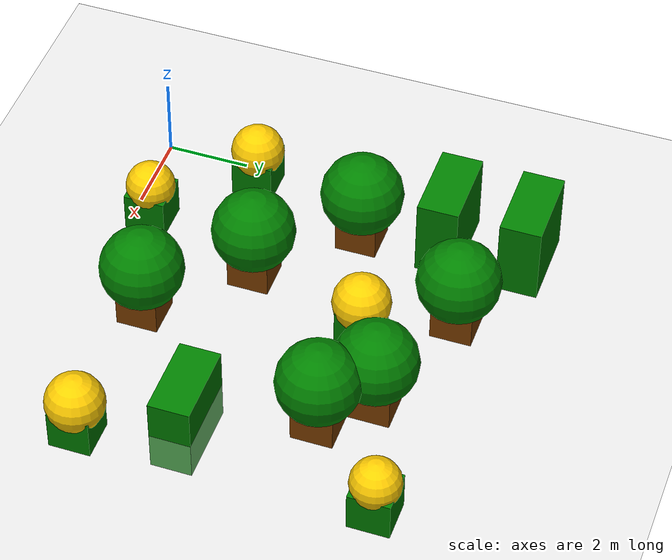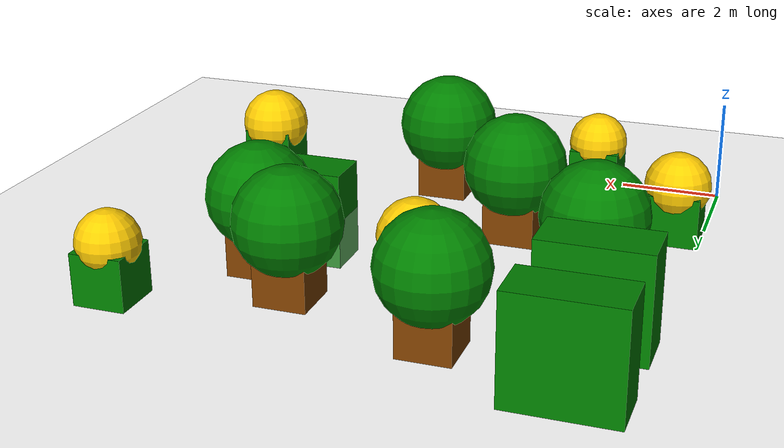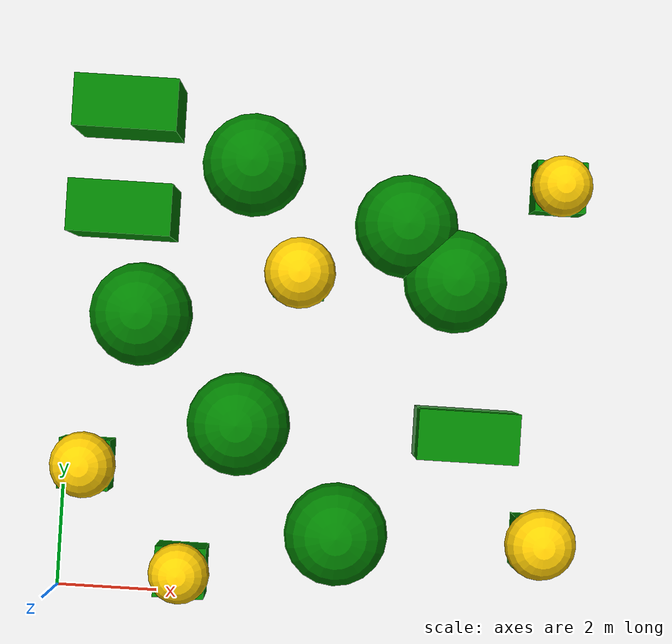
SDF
<sdf version="1.7">
 <world name="default">
  <model name="ground_plane">
   <static>1</static>
   <link name="link">
    <collision name="collision">
     <geometry><plane><normal>0 0 1</normal><size>100 100</size></plane></geometry>
     <surface>
      <contact><collide_bitmask>65535</collide_bitmask></contact>
      <friction><ode><mu>100</mu><mu2>50</mu2></ode></friction>
     </surface>
    </collision>
    <visual name="visual">
     <cast_shadows>0</cast_shadows>
     <geometry><plane><normal>0 0 1</normal><size>100 100</size></plane></geometry>
     <material>
      <script><uri>file://media/materials/scripts/gazebo.material</uri><name>Gazebo/Grey</name></script>
     </material>
    </visual>
   </link>
  </model>
  <light name="sun" type="directional">
   <pose>0 0 10 0 -0 0</pose>
   <diffuse>0.8 0.8 0.8 1</diffuse>
   <specular>0.2 0.2 0.2 1</specular>
   <attenuation>
    <range>1000</range>
    <constant>0.9</constant>
    <linear>0.01</linear>
    <quadratic>0.001</quadratic>
   </attenuation>
   <direction>-0.5 0.1 -0.9</direction>
   <spot><inner_angle>0</inner_angle><outer_angle>0</outer_angle><falloff>0</falloff></spot>
  </light>
  <model name="hedge">
   <static>1</static>
   <link name="link">
    <visual name="visual">
     <geometry><box><size>2 1 2</size></box></geometry>
     <material><ambient>0 0.5 0 1</ambient><diffuse>0 0.5 0 1</diffuse></material>
     <pose>0 0 1 0 -0 0</pose>
    </visual>
    <collision name="collision_stem">
     <geometry><box><size>2 1 2</size></box></geometry>
     <pose>0 0 1 0 -0 0</pose>
    </collision>
   </link>
   <pose>1 7.5 0 0 -0 0</pose>
  </model>
  <model name="hedge2">
   <static>1</static>
   <link name="link">
    <visual name="visual">
     <geometry><box><size>2 1 2</size></box></geometry>
     <material><ambient>0 0.5 0 1</ambient><diffuse>0 0.5 0 1</diffuse></material>
     <pose>0 0 1 0 -0 0</pose>
    </visual>
    <collision name="collision_stem1">
     <geometry><box><size>2 1 2</size></box></geometry>
     <pose>0 0 1 0 -0 0</pose>
    </collision>
   </link>
   <pose>1 9.5 0 0 -0 0</pose>
  </model>
  <model name="hedge3">
   <static>1</static>
   <link name="link">
    <visual name="visual">
     <geometry><box><size>2 1 2</size></box></geometry>
     <material><ambient>0 0.5 0 1</ambient><diffuse>0 0.5 0 1</diffuse></material>
     <pose>0 1 0 0 -0 0</pose>
    </visual>
    <collision name="collision_stem2">
     <geometry><box><size>2 1 2</size></box></geometry>
     <pose>0 1 0 0 -0 0</pose>
    </collision>
   </link>
   <pose>8 2.5 0 0 -0 0</pose>
  </model>
  <model name="tree">
   <static>1</static>
   <link name="link">
    <visual name="trunk">
     <geometry><box><size>1 1 1</size></box></geometry>
     <material><ambient>0.5 0.25 0 1</ambient><diffuse>0.5 0.25 0 1</diffuse></material>
     <pose>0 0 0.5 0 -0 0</pose>
    </visual>
    <collision name="collision_stem3">
     <geometry><box><size>1 1 1</size></box></geometry>
     <pose>0 0 0.5 0 -0 0</pose>
    </collision>
    <visual name="foliage">
     <geometry><sphere><radius>1</radius></sphere></geometry>
     <material><ambient>0 0.5 0 1</ambient><diffuse>0 0.5 0 1</diffuse></material>
     <pose>0 0 1.5 0 -0 0</pose>
    </visual>
   </link>
   <pose>3.5 3.5 0 0 -0 0</pose>
  </model>
  <model name="tree2">
   <static>1</static>
   <link name="link">
    <visual name="trunk">
     <geometry><box><size>1 1 1</size></box></geometry>
     <material><ambient>0.5 0.25 0 1</ambient><diffuse>0.5 0.25 0 1</diffuse></material>
     <pose>0 0 0.5 0 -0 0</pose>
    </visual>
    <collision name="collision_stem4">
     <geometry><box><size>1 1 1</size></box></geometry>
     <pose>0 0 0.5 0 -0 0</pose>
    </collision>
    <visual name="foliage">
     <geometry><sphere><radius>1</radius></sphere></geometry>
     <material><ambient>0 0.5 0 1</ambient><diffuse>0 0.5 0 1</diffuse></material>
     <pose>0 0 1.5 0 -0 0</pose>
    </visual>
   </link>
   <pose>7.5 6.5 0 0 -0 0</pose>
  </model>
  <model name="tree3">
   <static>1</static>
   <link name="link">
    <visual name="trunk">
     <geometry><box><size>1 1 1</size></box></geometry>
     <material><ambient>0.5 0.25 0 1</ambient><diffuse>0.5 0.25 0 1</diffuse></material>
     <pose>0 0 0.5 0 -0 0</pose>
    </visual>
    <collision name="collision_stem5">
     <geometry><box><size>1 1 1</size></box></geometry>
     <pose>0 0 0.5 0 -0 0</pose>
    </collision>
    <visual name="foliage">
     <geometry><sphere><radius>1</radius></sphere></geometry>
     <material><ambient>0 0.5 0 1</ambient><diffuse>0 0.5 0 1</diffuse></material>
     <pose>0 0 1.5 0 -0 0</pose>
    </visual>
   </link>
   <pose>6.5 7.5 0 0 -0 0</pose>
  </model>
  <model name="tree4">
   <static>1</static>
   <link name="link">
    <visual name="trunk">
     <geometry><box><size>1 1 1</size></box></geometry>
     <material><ambient>0.5 0.25 0 1</ambient><diffuse>0.5 0.25 0 1</diffuse></material>
     <pose>0 0 0.5 0 -0 0</pose>
    </visual>
    <collision name="collision_stem6">
     <geometry><box><size>1 1 1</size></box></geometry>
     <pose>0 0 0.5 0 -0 0</pose>
    </collision>
    <visual name="foliage">
     <geometry><sphere><radius>1</radius></sphere></geometry>
     <material><ambient>0 0.5 0 1</ambient><diffuse>0 0.5 0 1</diffuse></material>
     <pose>0 0 1.5 0 -0 0</pose>
    </visual>
   </link>
   <pose>1.5 5.5 0 0 -0 0</pose>
  </model>
  <model name="tree5">
   <static>1</static>
   <link name="link">
    <visual name="trunk">
     <geometry><box><size>1 1 1</size></box></geometry>
     <material><ambient>0.5 0.25 0 1</ambient><diffuse>0.5 0.25 0 1</diffuse></material>
     <pose>0 0 0.5 0 -0 0</pose>
    </visual>
    <collision name="collision_stem7">
     <geometry><box><size>1 1 1</size></box></geometry>
     <pose>0 0 0.5 0 -0 0</pose>
    </collision>
    <visual name="foliage">
     <geometry><sphere><radius>1</radius></sphere></geometry>
     <material><ambient>0 0.5 0 1</ambient><diffuse>0 0.5 0 1</diffuse></material>
     <pose>0 0 1.5 0 -0 0</pose>
    </visual>
   </link>
   <pose>5.5 1.5 0 0 -0 0</pose>
  </model>
  <model name="tree6">
   <static>1</static>
   <link name="link">
    <visual name="trunk">
     <geometry><box><size>1 1 1</size></box></geometry>
     <material><ambient>0.5 0.25 0 1</ambient><diffuse>0.5 0.25 0 1</diffuse></material>
     <pose>0 0 0.5 0 -0 0</pose>
    </visual>
    <collision name="collision_stem8">
     <geometry><box><size>1 1 1</size></box></geometry>
     <pose>0 0 0.5 0 -0 0</pose>
    </collision>
    <visual name="foliage">
     <geometry><sphere><radius>1</radius></sphere></geometry>
     <material><ambient>0 0.5 0 1</ambient><diffuse>0 0.5 0 1</diffuse></material>
     <pose>0 0 1.5 0 -0 0</pose>
    </visual>
   </link>
   <pose>3.5 8.5 0 0 -0 0</pose>
  </model>
  <model name="sunflower1">
   <static>1</static>
   <link name="link">
    <visual name="stem">
     <geometry><box><size>1 1 1</size></box></geometry>
     <material><ambient>0 0.5 0 1</ambient><diffuse>0 0.5 0 1</diffuse></material>
     <pose>0 0 0.5 0 -0 0</pose>
    </visual>
    <collision name="collision_stem9">
     <geometry><box><size>1 1 1</size></box></geometry>
     <pose>0 0 0.5 0 -0 0</pose>
    </collision>
    <visual name="flower_head">
     <geometry><sphere><radius>0.65</radius></sphere></geometry>
     <material><ambient>1 0.8 0 1</ambient><diffuse>1 0.8 0 1</diffuse></material>
     <pose>0 0 1.1 0 -0 0</pose>
    </visual>
   </link>
   <pose>0.5 2.5 0 0 -0 0</pose>
  </model>
  <model name="sunflower2">
   <static>1</static>
   <link name="link">
    <visual name="stem">
     <geometry><box><size>1 1 1</size></box></geometry>
     <material><ambient>0 0.5 0 1</ambient><diffuse>0 0.5 0 1</diffuse></material>
     <pose>0 0 0.5 0 -0 0</pose>
    </visual>
    <collision name="collision_stem10">
     <geometry><box><size>1 1 1</size></box></geometry>
     <pose>0 0 0.5 0 -0 0</pose>
    </collision>
    <visual name="flower_head">
     <geometry><sphere><radius>0.7</radius></sphere></geometry>
     <material><ambient>1 0.8 0.0117647 1</ambient><diffuse>1 0.8 0 1</diffuse></material>
     <pose>0 0 1.1 0 -0 0</pose>
    </visual>
   </link>
   <pose>4.5 6.5 0 0 -0 0</pose>
  </model>
  <model name="sunflower3">
   <static>1</static>
   <link name="link">
    <visual name="stem">
     <geometry><box><size>1 1 1</size></box></geometry>
     <material><ambient>0 0.5 0 1</ambient><diffuse>0 0.5 0 1</diffuse></material>
     <pose>0 0 0.5 0 -0 0</pose>
    </visual>
    <collision name="collision_stem11">
     <geometry><box><size>1 1 1</size></box></geometry>
     <pose>0 0 0.5 0 -0 0</pose>
    </collision>
    <visual name="flower_head">
     <geometry><sphere><radius>0.6</radius></sphere></geometry>
     <material><ambient>1 0.0188235 0.00784314 1</ambient><diffuse>1 0.8 0 1</diffuse></material>
     <pose>0 0 1.1 0 -0 0</pose>
    </visual>
   </link>
   <pose>2.5 0.5 0 0 -0 0</pose>
  </model>
  <model name="sunflower4">
   <static>1</static>
   <link name="link">
    <visual name="stem">
     <geometry><box><size>1 1 1</size></box></geometry>
     <material><ambient>0 0.5 0 1</ambient><diffuse>0 0.5 0 1</diffuse></material>
     <pose>0 0 0.5 0 -0 0</pose>
    </visual>
    <collision name="collision_stem12">
     <geometry><box><size>1 1 1</size></box></geometry>
     <pose>0 0 0.5 0 -0 0</pose>
    </collision>
    <visual name="flower_head">
     <geometry><sphere><radius>0.6</radius></sphere></geometry>
     <material><ambient>0.0235294 0.0384314 0.00784314 1</ambient><diffuse>1 0.8 0 1</diffuse></material>
     <pose>0 0 1.1 0 -0 0</pose>
    </visual>
   </link>
   <pose>9.5 8.5 0 0 -0 0</pose>
  </model>
  <model name="sunflower5">
   <static>1</static>
   <link name="link">
    <visual name="stem">
     <geometry><box><size>1 1 1</size></box></geometry>
     <material><ambient>0 0.5 0 1</ambient><diffuse>0 0.5 0 1</diffuse></material>
     <pose>0 0 0.5 0 -0 0</pose>
    </visual>
    <collision name="collision_stem13">
     <geometry><box><size>1 1 1</size></box></geometry>
     <pose>0 0 0.5 0 -0 0</pose>
    </collision>
    <visual name="flower_head">
     <geometry><sphere><radius>0.7</radius></sphere></geometry>
     <material><ambient>1 0.8 0.0117647 1</ambient><diffuse>1 0.8 0 1</diffuse></material>
     <pose>0 0 1.1 0 -0 0</pose>
    </visual>
   </link>
   <pose>9.5 1.5 0 0 -0 0</pose>
  </model>
  <gravity>0 0 -9.8</gravity>
  <magnetic_field>6e-06 2.3e-05 -4.2e-05</magnetic_field>
  <atmosphere type="adiabatic"/>
  <physics type="ode">
   <max_step_size>0.001</max_step_size>
   <real_time_factor>1</real_time_factor>
   <real_time_update_rate>1000</real_time_update_rate>
  </physics>
  <scene><ambient>0.4 0.4 0.4 1</ambient><background>0.7 0.7 0.7 1</background><shadows>1</shadows></scene>
  <spherical_coordinates>
   <surface_model>EARTH_WGS84</surface_model>
   <latitude_deg>0</latitude_deg>
   <longitude_deg>0</longitude_deg>
   <elevation>0</elevation>
   <heading_deg>0</heading_deg>
  </spherical_coordinates>
 </world>
</sdf>
